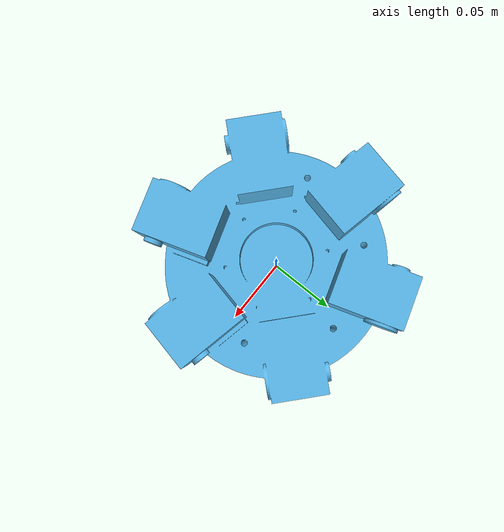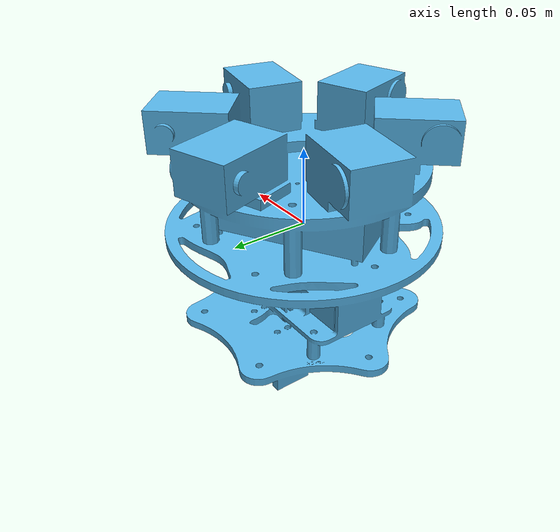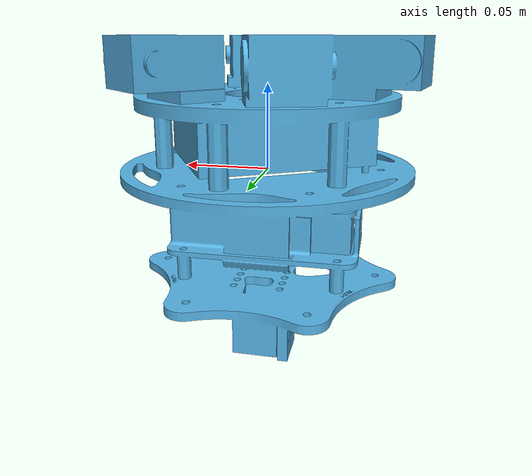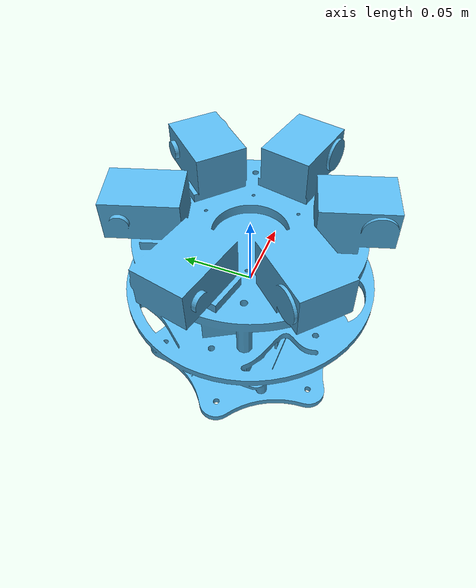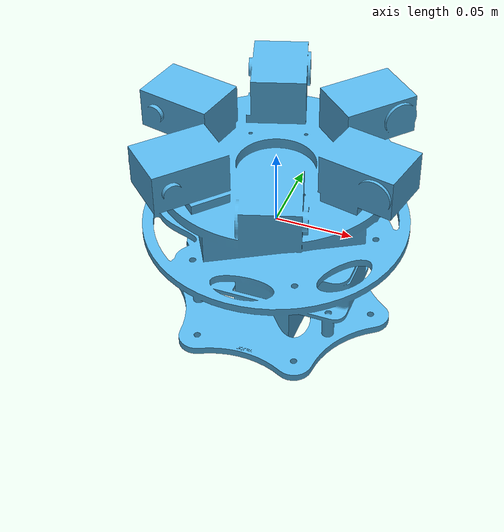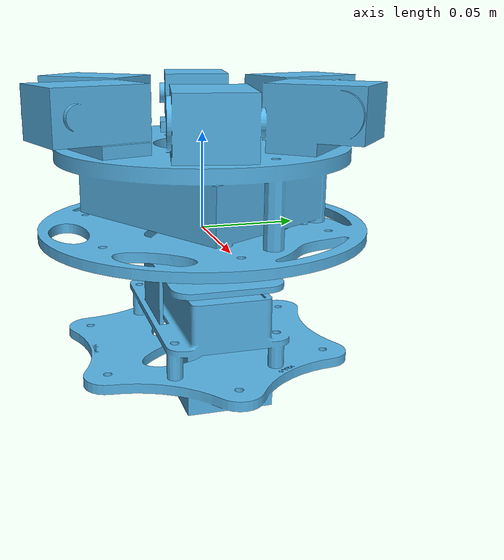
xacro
<?xml version="1.0"?>
<robot xmlns:xacro="http://www.ros.org/wiki/xacro">

    <!-- variables inclusion -->
    <xacro:include filename="$(find shellbot_pkg)/models/variables.urdf.xacro" />

    <!-- map link -->
    <link name="map">
        <selfCollide>1</selfCollide> -->
    </link>

    <!-- chassis link -->
    <link name="base_chassis">
        <selfCollide>0</selfCollide>
        <inertial>
            <mass value="${base_chassis_m}"/>
            <origin rpy ="0 0 0" xyz="0 0 0"/>
            <xacro:base_link_inertia/>
        </inertial>
        <collision name="base_chassis">
            <xacro:visual_off_base_link/>
            <xacro:base_link_geometry/>
        </collision>
        <visual>
        	<xacro:visual_off_base_link/>
            <xacro:base_link_geometry/>
        </visual>
    </link>

    <!-- from map to robot -->
    <joint name="to_robot" type="fixed">
        <parent link="map"/>
        <child link="base_chassis"/>
        <origin rpy="0 0 0" xyz="0 0 0"/>
    </joint>

    <!-- ******************************************** GAZEBO ******************************************** -->
    <gazebo reference="map"></gazebo>
    <gazebo reference="base_chassis"></gazebo>

</robot>

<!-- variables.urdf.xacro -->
<robot xmlns:xacro="http://www.ros.org/wiki/xacro">

	<!-- bottom leg starting position -->
	<xacro:property name="L_O0_B" value="${L_O0_B_X} 0 ${L_O0_B_Z}" />
	<xacro:property name="R_O0_B" value="0 0 1.0472" />

	<!--  DH from q_1_1_1 to q_1_i_2  -->
	<xacro:property name="DH_q_1_1_2_pos" value="${LB_12} 0 0" />
	<xacro:property name="DH_q_1_1_2_rot" value="0 0 0" />

	<!--  DH from q_1_1_2 to q_1_i_3  -->
	<xacro:property name="init_q_B_1_i_3" value="${-3.5 * pi / 180}" />
	<xacro:property name="DH_q_1_1_3_pos" value="${LB_23_X} ${LB_23_Z} ${-LB_23_Z}" />
	<xacro:property name="DH_q_1_1_3_rot" value="-${pi/2} ${init_q_B_1_i_3} 0" />

	<!--  DH from q_1_1_3 to q_1_i_4  -->
	<xacro:property name="init_q_B_1_i_4" value="${88 * pi / 180}" />
	<xacro:property name="DH_q_1_1_4_pos" value="${LB_34} 0 0" />
	<xacro:property name="DH_q_1_1_4_rot" value="0 0 ${init_q_B_1_i_4}" />

    <!--  upper leg starting position -->
    <xacro:property name="init_q_U_2_i_1" value="-0.67" />
    <xacro:property name="init_q_U_2_i_2" value="1.16" />
    <xacro:property name="DH_q_2_1_1_pos" value="${U_distance_X} 0.002 0" />
    <xacro:property name="DH_q_2_1_1_rot" value="${pi/2} ${init_q_U_2_i_1} 0" />
    <xacro:property name="DH_q_2_1_2_pos" value="${L12_U} -0.002 0" />
    <xacro:property name="DH_q_2_1_2_rot" value="0 0 ${init_q_U_2_i_2}" />

	<!-- ******************************** VISUAL ELEMENTS OFFSET ******************************** -->
	<xacro:macro name="visual_off_base_link">
		<origin rpy="0 0 0" xyz="0 0 0"/>
	</xacro:macro>

	<xacro:macro name="visual_off_upper_chassis">
		<origin rpy="0 0 0" xyz="0 0 0"/>
	</xacro:macro>

	<xacro:macro name="visual_off_bottom_chassis">
		<origin rpy="0 0 0" xyz="0 0 0"/>
	</xacro:macro>

	<xacro:macro name="visual_off_chassis">
		<origin rpy="0 0 0" xyz="0 0 0"/>
	</xacro:macro>

	<xacro:macro name="visual_off_FF_link_B_i">
		<origin rpy="0 0 0" xyz="0 0 -0.032"/>
	</xacro:macro>

	<xacro:macro name="visual_off_leg_B_i_1">
		<origin rpy="0 0 0" xyz="0 0 0"/>
	</xacro:macro>
	<xacro:macro name="visual_off_leg_B_i_2">
		<origin rpy="0 0 0" xyz="0 0 0"/>
	</xacro:macro>
	<xacro:macro name="visual_off_leg_B_i_3">
		<origin rpy="0 0 0" xyz="0 0 0"/>
	</xacro:macro>
	<xacro:macro name="visual_off_leg_B_i_4">
		<origin rpy="0 0 0" xyz="0 0 0"/>
	</xacro:macro>
	<xacro:macro name="visual_off_leg_B_i_5">
		<origin rpy="0 0 0" xyz="0 0 0"/>
	</xacro:macro>
	<xacro:macro name="visual_off_FF_link_U_i">
		<origin rpy="0 0 0" xyz="0 0 0"/>
	</xacro:macro>
	<xacro:macro name="visual_off_leg_U_i_1">
		<origin rpy="0 0 0" xyz="0 0 0"/>
	</xacro:macro>
	<xacro:macro name="visual_off_leg_U_i_2">
		<origin rpy="0 0 0" xyz="0 0 0"/>
	</xacro:macro>

	<!-- ******************************** CONSTANTS ******************************** -->
	<!-- spawn location -->
	<xacro:property name="spawn_center" value="0 0 0" />

	<!-- rescale_to_meters -->
	<xacro:property name="scaling" value="0.001 0.001 0.001" />

	<!-- center gear radius -->
	<xacro:property name="CG_radius" value="0.040" />

	<!-- orbit gear radius -->
	<xacro:property name="OG_radius" value="0.015" />

	<!-- orbit gear radius -->
	<xacro:property name="gears_height" value="0.019" />

	<!-- distance between middle gear and orbit gear center -->
	<xacro:property name="L_O0_B_X" value="0.066" />

	<!-- distance between chassis center and orbit gear center -->
	<xacro:property name="L_O0_B_Z" value="-0.029" />

	<!-- distance between orbit gear center and successive joint (LB12) -->
	<xacro:property name="LB_12" value="0.120" />

	<!-- distance between joint q_1_1_2 and q_1_1_3 ORIGINAL:0.038 -->
	<xacro:property name="LB_23_X" value="0.0335" />

	<!-- interax q_1_1_2 and q_1_1_3 along z -->
	<xacro:property name="LB_23_Z" value="0.02425" />

	<!-- interax q_1_1_2 and q_1_1_3 along y -->
	<xacro:property name="LB_23_Y" value="0.02794" />

	<!-- distance between joint q_1_1_3 and q_1_1_4 ORIGINAL:0.066 -->
	<xacro:property name="LB_34" value="0.04" />

	<!-- interax q_1_1_2 and q_1_1_4 along z -->
	<xacro:property name="LB_34_Z" value="0.00" />

	<!-- distance between joint q_1_1_4 and ee leg ORIGINAL:0.01169 -->
	<xacro:property name="LB_45" value="0.112" />

	<!-- distance x center-first joint upper leg -->
	<xacro:property name="U_distance_X" value="0.07675" />

	<!-- distance Z center-first joint upper leg -->
	<xacro:property name="U_distance_Z" value="0.0635" />

	<!-- upper leg 12 lenght  ORIGINAL:0.085-->
	<xacro:property name="L12_U" value="0.065" />

	<!-- upper leg 23 lenght -->
	<xacro:property name="L23_U" value="0.085" />

	<!-- chassis height -->
	<xacro:property name="Hchassis" value="0.01" />

	<!-- chassis radius -->
	<xacro:property name="Rchassis" value="0.08" />

	<!-- chassis relative distance/2 -->
	<xacro:property name="DMchassis" value="${(Hchassis*2+Dchassis)/2}" />

	<!-- visual proprieties -->
	<xacro:property name="link_radius" value="0.005" />
	<xacro:property name="LB12_C_pos" value="${LB_12/2} 0 0" />
	<xacro:property name="LB_12_len" value="${LB_12}" />
	<xacro:property name="LB23_C_pos" value="${LB_23_X/2} 0 0" />
	<xacro:property name="LB_23_len" value="${LB_23_X}" />
	<xacro:property name="LB34_C_pos" value="${LB_34/2} 0 0" />
	<xacro:property name="LB_34_len" value="${LB_34}" />
	<xacro:property name="LB45_C_pos" value="${LB_45/2} 0 0" />
	<xacro:property name="LB_45_len" value="${LB_45}" />

	<!-- joint limits -->
	<xacro:property name="AX_12A_maxeffort" value="0.736" />
	<xacro:property name="AX_18A_maxeffort" value="0.882" />
	<xacro:property name="AX_12A_maxspeed" value="1.78465545" />
	<xacro:property name="AX_18A_maxspeed" value="1.78465545" />

	<!-- joint limits - BOTTOM LEGS -->
	<xacro:property name="q1_max_pos" value="0" />
	<xacro:property name="q1_min_pos" value="-${2.5}" />
	<xacro:property name="q2_max_pos" value="${pi}" />
	<xacro:property name="q2_min_pos" value="-${pi}" />
	<xacro:property name="q3_max_pos" value="${pi}" />
	<xacro:property name="q3_min_pos" value="-${pi/2}" />
	<xacro:property name="q4_max_pos" value="${pi}" />
	<xacro:property name="q4_min_pos" value="-${pi}" />

	<!-- joint limits - UPPER LEGS -->
	<xacro:property name="q_U_1_max_pos" value="${pi/2}" />
	<xacro:property name="q_U_1_min_pos" value="-${pi/2}" />
	<xacro:property name="q_U_2_max_pos" value="${pi/2}" />
	<xacro:property name="q_U_2_min_pos" value="-${pi/2}" />

	<!-- ******************************** PHYSICAL PROPERTIES ******************************** -->
	<xacro:property name="base_chassis_m" value="1.007" />

	<xacro:property name="LB_i_1_m" value="0.042" />
	<xacro:property name="LB_i_2_m" value="0.108" />
	<xacro:property name="LB_i_3_m" value="0.008" />
	<xacro:property name="LB_i_4_m" value="0.152" />	<!-- bottom shell mass -->

	<xacro:property name="LU_i_1_m" value="0.011" />
	<xacro:property name="LU_i_2_m" value="0.133" />  	<!-- upper shell mass -->

	<!-- ******************************** INERTIAS ******************************** -->
	<xacro:macro name="base_link_inertia">
			<inertia ixx="3444e-6" ixy="-37e-6" ixz="6e-6" iyy="3644e-6" iyz="70e-6" izz="2502e-6" />
	</xacro:macro>

	<xacro:macro name="leg_u_i_0_inertia">
			<inertia ixx="1e-6" ixy="0" ixz="0" iyy="1e-6" iyz="0" izz="1e-6" />
	</xacro:macro>

	<xacro:macro name="leg_U_i_1_inertia">
			<inertia ixx="13e-6" ixy="9e-6" ixz="2e-6" iyy="19e-6" iyz="-2e-6" izz="30e-6" />
	</xacro:macro>

	<xacro:macro name="leg_U_i_2_inertia">
			<inertia ixx="180e-6" ixy="-42e-6" ixz="-7e-6" iyy="608e-6" iyz="1e-6" izz="528e-6" />
	</xacro:macro>

	<xacro:macro name="leg_B_i_1_inertia">
		<inertia ixx="27e-6" ixy="-16e-6" ixz="0" iyy="125e-6" iyz="0" izz="110e-6" />
	</xacro:macro>

	<xacro:macro name="leg_B_i_2_inertia">
			<inertia ixx="81e-6" ixy="-44e-6" ixz="15e-6" iyy="85e-6" iyz="15e-6" izz="121e-6" />
	</xacro:macro>

	<xacro:macro name="leg_B_i_3_inertia">
			<inertia ixx="4e-6" ixy="0.4e-6" ixz="0" iyy="8e-6" iyz="0" izz="5e-6" />
	</xacro:macro>

	<xacro:macro name="leg_B_i_4_inertia">
			<inertia ixx="186e-6" ixy="54e-6" ixz="-1e-6" iyy="474e-6" iyz="1e-6" izz="391e-6" />
	</xacro:macro>

	<!-- surface_def -->
	<xacro:macro name="default_surface">
		<surface>
			<contact>
				<friction>
    				<ode>
      					<mu>1000</mu>
      					<mu2>1500</mu2>
    				</ode>
  				</friction>
  				<bounce>
    				<restitution_coefficient>0.001</restitution_coefficient>
    				<threshold>0.01</threshold>
  				</bounce>
				<poissons_ratio>0.347</poissons_ratio>
				<elastic_modulus>8.8e+07</elastic_modulus>
				<ode>
					<soft_cfm>0.004</soft_cfm>
					<soft_erp>0.05</soft_erp>
					<kp>10</kp>
					<kd>2.5</kd>
					<max_vel>10.0</max_vel>
					<min_depth>0.001</min_depth>
				</ode>
			</contact>
		</surface>
	</xacro:macro>

	<!-- ode_solver -->
	<xacro:macro name="ode_solver">
		<physics name="ode_custom" type="oder" default="true">
			<real_time_update_rate>1000</real_time_update_rate>
			<max_step_size>0.008</max_step_size>
			<min_step_size>0.0001</min_step_size>
			<max_contacts>50</max_contacts>
			<use_dynamic_moi_rescaling>1</use_dynamic_moi_rescaling>
			<ode>
				<solver>
					<type>quick</type>
					<precon_iters>10</precon_iters>
					<iters>50</iters>
					<sor>1.2</sor>
				</solver>
				<constraints>
					<cfm>0.05</cfm>
					<erp>0.1</erp>
				</constraints>
			</ode>
		</physics>
	</xacro:macro>

	<!-- *********************************************** MESHES FILES UPLOAD *********************************************************** -->
	<!-- stl file location -->
	<xacro:property name="stl_path" value="package://shellbot_pkg/meshes/" />

    <!-- chassis -->
	<xacro:property name="base_chassis" value="${stl_path}base_chassis.stl" />

    <!-- bottom legs -->
    <xacro:property name="leg_B_01" value="${stl_path}leg_B_01.stl" />
    <xacro:property name="central_gear" value="${stl_path}central_gear.stl" />
    <xacro:property name="leg_B_12" value="${stl_path}leg_B_12.stl" />
    <xacro:property name="leg_B_23" value="${stl_path}leg_B_23.stl" />
    <xacro:property name="bottom_shell" value="${stl_path}bottom_shell.stl" />

    <!-- upper_legs -->
    <xacro:property name="leg_U_01" value="${stl_path}leg_U_01.stl" />
    <xacro:property name="upper_shell" value="${stl_path}upper_shell.stl" />

    <!-- ***************************************** MESHES FILES DEFINITIONS ************************************************************ -->
	<!-- chassis -->
	<xacro:macro name="base_link_geometry">
		<geometry>
			<mesh filename="${base_chassis}" scale="${scaling}" />
		</geometry>
	</xacro:macro>

	<!-- leg gear and first link -->
    <xacro:macro name="leg_B_01_geometry">
        <geometry>
            <mesh filename="${leg_B_01}" scale="${scaling}" />
        </geometry>
    </xacro:macro>

	<!-- first and second motor block -->
    <xacro:macro name="leg_B_12_geometry">
        <geometry>
			<mesh filename="${leg_B_12}" scale="${scaling}" />
		</geometry>
    </xacro:macro>

	<!-- second link -->
    <xacro:macro name="leg_B_23_geometry">
        <geometry>
			<mesh filename="${leg_B_23}" scale="${scaling}" />
		</geometry>
    </xacro:macro>

    <xacro:macro name="bottom_shell_geometry">
        <geometry>
			<mesh filename="${bottom_shell}" scale="${scaling}" />
		</geometry>
    </xacro:macro>

    <xacro:macro name="leg_U_01_geometry">
        <geometry>
			<mesh filename="${leg_U_01}" scale="${scaling}" />
		</geometry>
    </xacro:macro>

    <xacro:macro name="upper_shell_geometry">
		<origin rpy="0 0 0" xyz="0 0 0" />
        <geometry>
			<mesh filename="${upper_shell}" scale="${scaling}" />
		</geometry>
    </xacro:macro>

</robot>
